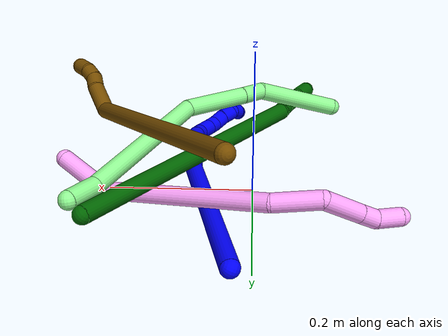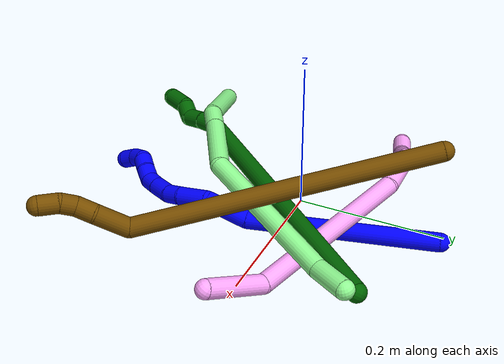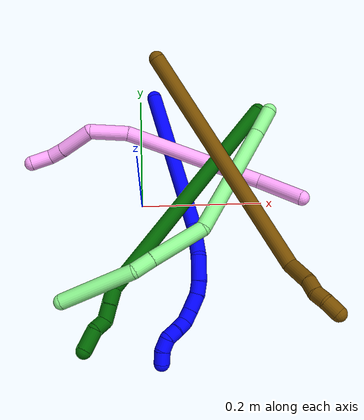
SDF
<sdf version="1.7">
 <world name="default">
  <model name="1">
   <static>0</static>
   <link name="1">
    <collision name="collision-cylinder-e_1_1_4">
     <pose>0.014286 -0.124227 0.009486 1.49459 0.114163 0.105794</pose>
     <geometry><cylinder><radius>0.0125</radius><length>0.25081</length></cylinder></geometry>
     <surface>
      <friction><ode><mu>1.16</mu><mu2>1.16</mu2><slip1>0</slip1><slip2>0</slip2></ode></friction>
      <contact><ode><kp>1e+06</kp><kd>1</kd><max_vel>0</max_vel><min_depth>0.001</min_depth></ode></contact>
     </surface>
    </collision>
    <visual name="visual-cylinder-e_1_1_4">
     <pose>0.014286 -0.124227 0.009486 1.49459 0.114163 0.105794</pose>
     <geometry><cylinder><radius>0.0125</radius><length>0.25081</length></cylinder></geometry>
     <material><ambient>0 0 1 1</ambient></material>
    </visual>
    <collision name="collision-cylinder-e_2_4_5">
     <pose>0.022051 -0.276736 0.021442 1.48367 -0.225746 -0.207028</pose>
     <geometry><cylinder><radius>0.0125</radius><length>0.058258</length></cylinder></geometry>
     <surface>
      <friction><ode><mu>1.16</mu><mu2>1.16</mu2><slip1>0</slip1><slip2>0</slip2></ode></friction>
      <contact><ode><kp>1e+06</kp><kd>1</kd><max_vel>0</max_vel><min_depth>0.001</min_depth></ode></contact>
     </surface>
    </collision>
    <visual name="visual-cylinder-e_2_4_5">
     <pose>0.022051 -0.276736 0.021442 1.48367 -0.225746 -0.207028</pose>
     <geometry><cylinder><radius>0.0125</radius><length>0.058258</length></cylinder></geometry>
     <material><ambient>0 0 1 1</ambient></material>
    </visual>
    <collision name="collision-cylinder-e_3_5_6">
     <pose>0.017915 -0.324898 0.019459 1.79115 0.116489 0.145377</pose>
     <geometry><cylinder><radius>0.0125</radius><length>0.041024</length></cylinder></geometry>
     <surface>
      <friction><ode><mu>1.16</mu><mu2>1.16</mu2><slip1>0</slip1><slip2>0</slip2></ode></friction>
      <contact><ode><kp>1e+06</kp><kd>1</kd><max_vel>0</max_vel><min_depth>0.001</min_depth></ode></contact>
     </surface>
    </collision>
    <visual name="visual-cylinder-e_3_5_6">
     <pose>0.017915 -0.324898 0.019459 1.79115 0.116489 0.145377</pose>
     <geometry><cylinder><radius>0.0125</radius><length>0.041024</length></cylinder></geometry>
     <material><ambient>0 0 1 1</ambient></material>
    </visual>
    <collision name="collision-cylinder-e_4_6_7">
     <pose>0.021464 -0.354697 0.010706 1.97986 0.107372 0.163369</pose>
     <geometry><cylinder><radius>0.0125</radius><length>0.021746</length></cylinder></geometry>
     <surface>
      <friction><ode><mu>1.16</mu><mu2>1.16</mu2><slip1>0</slip1><slip2>0</slip2></ode></friction>
      <contact><ode><kp>1e+06</kp><kd>1</kd><max_vel>0</max_vel><min_depth>0.001</min_depth></ode></contact>
     </surface>
    </collision>
    <visual name="visual-cylinder-e_4_6_7">
     <pose>0.021464 -0.354697 0.010706 1.97986 0.107372 0.163369</pose>
     <geometry><cylinder><radius>0.0125</radius><length>0.021746</length></cylinder></geometry>
     <material><ambient>0 0 1 1</ambient></material>
    </visual>
    <collision name="collision-cylinder-e_5_7_8">
     <pose>0.02051 -0.376256 -0.001041 2.13992 -0.152204 -0.276813</pose>
     <geometry><cylinder><radius>0.0125</radius><length>0.027961</length></cylinder></geometry>
     <surface>
      <friction><ode><mu>1.16</mu><mu2>1.16</mu2><slip1>0</slip1><slip2>0</slip2></ode></friction>
      <contact><ode><kp>1e+06</kp><kd>1</kd><max_vel>0</max_vel><min_depth>0.001</min_depth></ode></contact>
     </surface>
    </collision>
    <visual name="visual-cylinder-e_5_7_8">
     <pose>0.02051 -0.376256 -0.001041 2.13992 -0.152204 -0.276813</pose>
     <geometry><cylinder><radius>0.0125</radius><length>0.027961</length></cylinder></geometry>
     <material><ambient>0 0 1 1</ambient></material>
    </visual>
    <collision name="collision-cylinder-e_6_8_9">
     <pose>0.016345 -0.396123 -0.013864 2.14971 -0.205152 -0.37602</pose>
     <geometry><cylinder><radius>0.0125</radius><length>0.020076</length></cylinder></geometry>
     <surface>
      <friction><ode><mu>1.16</mu><mu2>1.16</mu2><slip1>0</slip1><slip2>0</slip2></ode></friction>
      <contact><ode><kp>1e+06</kp><kd>1</kd><max_vel>0</max_vel><min_depth>0.001</min_depth></ode></contact>
     </surface>
    </collision>
    <visual name="visual-cylinder-e_6_8_9">
     <pose>0.016345 -0.396123 -0.013864 2.14971 -0.205152 -0.37602</pose>
     <geometry><cylinder><radius>0.0125</radius><length>0.020076</length></cylinder></geometry>
     <material><ambient>0 0 1 1</ambient></material>
    </visual>
    <collision name="collision-cylinder-e_7_9_10">
     <pose>0.008152 -0.410579 -0.024082 2.23134 -0.661951 -1.2243</pose>
     <geometry><cylinder><radius>0.0125</radius><length>0.020006</length></cylinder></geometry>
     <surface>
      <friction><ode><mu>1.16</mu><mu2>1.16</mu2><slip1>0</slip1><slip2>0</slip2></ode></friction>
      <contact><ode><kp>1e+06</kp><kd>1</kd><max_vel>0</max_vel><min_depth>0.001</min_depth></ode></contact>
     </surface>
    </collision>
    <visual name="visual-cylinder-e_7_9_10">
     <pose>0.008152 -0.410579 -0.024082 2.23134 -0.661951 -1.2243</pose>
     <geometry><cylinder><radius>0.0125</radius><length>0.020006</length></cylinder></geometry>
     <material><ambient>0 0 1 1</ambient></material>
    </visual>
    <collision name="collision-cylinder-e_8_10_11">
     <pose>-0.003493 -0.422564 -0.035025 2.38549 -0.58013 -1.28899</pose>
     <geometry><cylinder><radius>0.0125</radius><length>0.020056</length></cylinder></geometry>
     <surface>
      <friction><ode><mu>1.16</mu><mu2>1.16</mu2><slip1>0</slip1><slip2>0</slip2></ode></friction>
      <contact><ode><kp>1e+06</kp><kd>1</kd><max_vel>0</max_vel><min_depth>0.001</min_depth></ode></contact>
     </surface>
    </collision>
    <visual name="visual-cylinder-e_8_10_11">
     <pose>-0.003493 -0.422564 -0.035025 2.38549 -0.58013 -1.28899</pose>
     <geometry><cylinder><radius>0.0125</radius><length>0.020056</length></cylinder></geometry>
     <material><ambient>0 0 1 1</ambient></material>
    </visual>
    <collision name="collision-cylinder-e_9_11_12">
     <pose>-0.008362 -0.436161 -0.047344 2.24113 0.062663 0.129507</pose>
     <geometry><cylinder><radius>0.0125</radius><length>0.020054</length></cylinder></geometry>
     <surface>
      <friction><ode><mu>1.16</mu><mu2>1.16</mu2><slip1>0</slip1><slip2>0</slip2></ode></friction>
      <contact><ode><kp>1e+06</kp><kd>1</kd><max_vel>0</max_vel><min_depth>0.001</min_depth></ode></contact>
     </surface>
    </collision>
    <visual name="visual-cylinder-e_9_11_12">
     <pose>-0.008362 -0.436161 -0.047344 2.24113 0.062663 0.129507</pose>
     <geometry><cylinder><radius>0.0125</radius><length>0.020054</length></cylinder></geometry>
     <material><ambient>0 0 1 1</ambient></material>
    </visual>
    <collision name="collision-cylinder-e_10_12_2">
     <pose>-0.004368 -0.452542 -0.057544 2.00719 0.343042 0.531009</pose>
     <geometry><cylinder><radius>0.0125</radius><length>0.02001</length></cylinder></geometry>
     <surface>
      <friction><ode><mu>1.16</mu><mu2>1.16</mu2><slip1>0</slip1><slip2>0</slip2></ode></friction>
      <contact><ode><kp>1e+06</kp><kd>1</kd><max_vel>0</max_vel><min_depth>0.001</min_depth></ode></contact>
     </surface>
    </collision>
    <visual name="visual-cylinder-e_10_12_2">
     <pose>-0.004368 -0.452542 -0.057544 2.00719 0.343042 0.531009</pose>
     <geometry><cylinder><radius>0.0125</radius><length>0.02001</length></cylinder></geometry>
     <material><ambient>0 0 1 1</ambient></material>
    </visual>
    <collision name="collision-sphere-2">
     <pose>-0.001003 -0.461081 -0.061526 0 -0 0</pose>
     <geometry><sphere><radius>0.0125</radius></sphere></geometry>
     <surface>
      <friction><ode><mu>1.16</mu><mu2>1.16</mu2><slip1>0</slip1><slip2>0</slip2></ode></friction>
      <contact><ode><kp>1e+06</kp><kd>1</kd><max_vel>0</max_vel><min_depth>0.001</min_depth></ode></contact>
     </surface>
    </collision>
    <visual name="visual-sphere-2">
     <pose>-0.001003 -0.461081 -0.061526 0 -0 0</pose>
     <geometry><sphere><radius>0.0125</radius></sphere></geometry>
     <material><ambient>0 0 1 1</ambient></material>
    </visual>
    <collision name="collision-sphere-12">
     <pose>-0.007734 -0.444003 -0.053561 0 -0 0</pose>
     <geometry><sphere><radius>0.0125</radius></sphere></geometry>
     <surface>
      <friction><ode><mu>1.16</mu><mu2>1.16</mu2><slip1>0</slip1><slip2>0</slip2></ode></friction>
      <contact><ode><kp>1e+06</kp><kd>1</kd><max_vel>0</max_vel><min_depth>0.001</min_depth></ode></contact>
     </surface>
    </collision>
    <visual name="visual-sphere-12">
     <pose>-0.007734 -0.444003 -0.053561 0 -0 0</pose>
     <geometry><sphere><radius>0.0125</radius></sphere></geometry>
     <material><ambient>0 0 1 1</ambient></material>
    </visual>
    <collision name="collision-sphere-11">
     <pose>-0.00899 -0.428319 -0.041127 0 -0 0</pose>
     <geometry><sphere><radius>0.0125</radius></sphere></geometry>
     <surface>
      <friction><ode><mu>1.16</mu><mu2>1.16</mu2><slip1>0</slip1><slip2>0</slip2></ode></friction>
      <contact><ode><kp>1e+06</kp><kd>1</kd><max_vel>0</max_vel><min_depth>0.001</min_depth></ode></contact>
     </surface>
    </collision>
    <visual name="visual-sphere-11">
     <pose>-0.00899 -0.428319 -0.041127 0 -0 0</pose>
     <geometry><sphere><radius>0.0125</radius></sphere></geometry>
     <material><ambient>0 0 1 1</ambient></material>
    </visual>
    <collision name="collision-sphere-10">
     <pose>0.002004 -0.41681 -0.028923 0 -0 0</pose>
     <geometry><sphere><radius>0.0125</radius></sphere></geometry>
     <surface>
      <friction><ode><mu>1.16</mu><mu2>1.16</mu2><slip1>0</slip1><slip2>0</slip2></ode></friction>
      <contact><ode><kp>1e+06</kp><kd>1</kd><max_vel>0</max_vel><min_depth>0.001</min_depth></ode></contact>
     </surface>
    </collision>
    <visual name="visual-sphere-10">
     <pose>0.002004 -0.41681 -0.028923 0 -0 0</pose>
     <geometry><sphere><radius>0.0125</radius></sphere></geometry>
     <material><ambient>0 0 1 1</ambient></material>
    </visual>
    <collision name="collision-sphere-9">
     <pose>0.014301 -0.404349 -0.019241 0 -0 0</pose>
     <geometry><sphere><radius>0.0125</radius></sphere></geometry>
     <surface>
      <friction><ode><mu>1.16</mu><mu2>1.16</mu2><slip1>0</slip1><slip2>0</slip2></ode></friction>
      <contact><ode><kp>1e+06</kp><kd>1</kd><max_vel>0</max_vel><min_depth>0.001</min_depth></ode></contact>
     </surface>
    </collision>
    <visual name="visual-sphere-9">
     <pose>0.014301 -0.404349 -0.019241 0 -0 0</pose>
     <geometry><sphere><radius>0.0125</radius></sphere></geometry>
     <material><ambient>0 0 1 1</ambient></material>
    </visual>
    <collision name="collision-sphere-4">
     <pose>0.028571 -0.248454 0.018972 0 -0 0</pose>
     <geometry><sphere><radius>0.0125</radius></sphere></geometry>
     <surface>
      <friction><ode><mu>1.16</mu><mu2>1.16</mu2><slip1>0</slip1><slip2>0</slip2></ode></friction>
      <contact><ode><kp>1e+06</kp><kd>1</kd><max_vel>0</max_vel><min_depth>0.001</min_depth></ode></contact>
     </surface>
    </collision>
    <visual name="visual-sphere-4">
     <pose>0.028571 -0.248454 0.018972 0 -0 0</pose>
     <geometry><sphere><radius>0.0125</radius></sphere></geometry>
     <material><ambient>0 0 1 1</ambient></material>
    </visual>
    <collision name="collision-sphere-1">
     <geometry><sphere><radius>0.0125</radius></sphere></geometry>
     <surface>
      <friction><ode><mu>1.16</mu><mu2>1.16</mu2><slip1>0</slip1><slip2>0</slip2></ode></friction>
      <contact><ode><kp>1e+06</kp><kd>1</kd><max_vel>0</max_vel><min_depth>0.001</min_depth></ode></contact>
     </surface>
    </collision>
    <visual name="visual-sphere-1">
     <geometry><sphere><radius>0.0125</radius></sphere></geometry>
     <material><ambient>0 0 1 1</ambient></material>
    </visual>
    <collision name="collision-sphere-8">
     <pose>0.01839 -0.387897 -0.008488 0 -0 0</pose>
     <geometry><sphere><radius>0.0125</radius></sphere></geometry>
     <surface>
      <friction><ode><mu>1.16</mu><mu2>1.16</mu2><slip1>0</slip1><slip2>0</slip2></ode></friction>
      <contact><ode><kp>1e+06</kp><kd>1</kd><max_vel>0</max_vel><min_depth>0.001</min_depth></ode></contact>
     </surface>
    </collision>
    <visual name="visual-sphere-8">
     <pose>0.01839 -0.387897 -0.008488 0 -0 0</pose>
     <geometry><sphere><radius>0.0125</radius></sphere></geometry>
     <material><ambient>0 0 1 1</ambient></material>
    </visual>
    <collision name="collision-sphere-5">
     <pose>0.015531 -0.305018 0.023912 0 -0 0</pose>
     <geometry><sphere><radius>0.0125</radius></sphere></geometry>
     <surface>
      <friction><ode><mu>1.16</mu><mu2>1.16</mu2><slip1>0</slip1><slip2>0</slip2></ode></friction>
      <contact><ode><kp>1e+06</kp><kd>1</kd><max_vel>0</max_vel><min_depth>0.001</min_depth></ode></contact>
     </surface>
    </collision>
    <visual name="visual-sphere-5">
     <pose>0.015531 -0.305018 0.023912 0 -0 0</pose>
     <geometry><sphere><radius>0.0125</radius></sphere></geometry>
     <material><ambient>0 0 1 1</ambient></material>
    </visual>
    <collision name="collision-sphere-6">
     <pose>0.020299 -0.344779 0.015006 0 -0 0</pose>
     <geometry><sphere><radius>0.0125</radius></sphere></geometry>
     <surface>
      <friction><ode><mu>1.16</mu><mu2>1.16</mu2><slip1>0</slip1><slip2>0</slip2></ode></friction>
      <contact><ode><kp>1e+06</kp><kd>1</kd><max_vel>0</max_vel><min_depth>0.001</min_depth></ode></contact>
     </surface>
    </collision>
    <visual name="visual-sphere-6">
     <pose>0.020299 -0.344779 0.015006 0 -0 0</pose>
     <geometry><sphere><radius>0.0125</radius></sphere></geometry>
     <material><ambient>0 0 1 1</ambient></material>
    </visual>
    <collision name="collision-sphere-7">
     <pose>0.02263 -0.364616 0.006406 0 -0 0</pose>
     <geometry><sphere><radius>0.0125</radius></sphere></geometry>
     <surface>
      <friction><ode><mu>1.16</mu><mu2>1.16</mu2><slip1>0</slip1><slip2>0</slip2></ode></friction>
      <contact><ode><kp>1e+06</kp><kd>1</kd><max_vel>0</max_vel><min_depth>0.001</min_depth></ode></contact>
     </surface>
    </collision>
    <visual name="visual-sphere-7">
     <pose>0.02263 -0.364616 0.006406 0 -0 0</pose>
     <geometry><sphere><radius>0.0125</radius></sphere></geometry>
     <material><ambient>0 0 1 1</ambient></material>
    </visual>
    <inertial>
     <pose>0.013618 -0.24257 0.002134 0 -0 0</pose>
     <mass>0.5</mass>
     <inertia>
      <ixx>0.001477</ixx>
      <ixy>0</ixy>
      <ixz>0</ixz>
      <iyy>0.000212</iyy>
      <iyz>0</iyz>
      <izz>0.001196</izz>
     </inertia>
    </inertial>
   </link>
   <pose>0.024946 0.202003 0.011492 -0.12886 1.05824 0.006364</pose>
  </model>
  <model name="4">
   <static>0</static>
   <link name="4">
    <collision name="collision-cylinder-e_1_1_4">
     <pose>-0.035362 0.017041 0.011123 -0.992518 -1.04861 0.606896</pose>
     <geometry><cylinder><radius>0.0125</radius><length>0.081598</length></cylinder></geometry>
     <surface>
      <friction><ode><mu>1.16</mu><mu2>1.16</mu2><slip1>0</slip1><slip2>0</slip2></ode></friction>
      <contact><ode><kp>1e+06</kp><kd>1</kd><max_vel>0</max_vel><min_depth>0.001</min_depth></ode></contact>
     </surface>
    </collision>
    <visual name="visual-cylinder-e_1_1_4">
     <pose>-0.035362 0.017041 0.011123 -0.992518 -1.04861 0.606896</pose>
     <geometry><cylinder><radius>0.0125</radius><length>0.081598</length></cylinder></geometry>
     <material><ambient>1 0.65098 0.996078 1</ambient></material>
    </visual>
    <collision name="collision-cylinder-e_2_4_5">
     <pose>-0.165417 0.036977 0.091688 -0.041663 -0.93763 0.021104</pose>
     <geometry><cylinder><radius>0.0125</radius><length>0.234925</length></cylinder></geometry>
     <surface>
      <friction><ode><mu>1.16</mu><mu2>1.16</mu2><slip1>0</slip1><slip2>0</slip2></ode></friction>
      <contact><ode><kp>1e+06</kp><kd>1</kd><max_vel>0</max_vel><min_depth>0.001</min_depth></ode></contact>
     </surface>
    </collision>
    <visual name="visual-cylinder-e_2_4_5">
     <pose>-0.165417 0.036977 0.091688 -0.041663 -0.93763 0.021104</pose>
     <geometry><cylinder><radius>0.0125</radius><length>0.234925</length></cylinder></geometry>
     <material><ambient>1 0.65098 0.996078 1</ambient></material>
    </visual>
    <collision name="collision-cylinder-e_3_5_6">
     <pose>-0.287632 0.031915 0.175244 0.513315 -1.03871 -0.297863</pose>
     <geometry><cylinder><radius>0.0125</radius><length>0.063874</length></cylinder></geometry>
     <surface>
      <friction><ode><mu>1.16</mu><mu2>1.16</mu2><slip1>0</slip1><slip2>0</slip2></ode></friction>
      <contact><ode><kp>1e+06</kp><kd>1</kd><max_vel>0</max_vel><min_depth>0.001</min_depth></ode></contact>
     </surface>
    </collision>
    <visual name="visual-cylinder-e_3_5_6">
     <pose>-0.287632 0.031915 0.175244 0.513315 -1.03871 -0.297863</pose>
     <geometry><cylinder><radius>0.0125</radius><length>0.063874</length></cylinder></geometry>
     <material><ambient>1 0.65098 0.996078 1</ambient></material>
    </visual>
    <collision name="collision-cylinder-e_4_6_7">
     <pose>-0.342791 0.016419 0.181352 2.38624 -1.19209 -2.0832</pose>
     <geometry><cylinder><radius>0.0125</radius><length>0.05949</length></cylinder></geometry>
     <surface>
      <friction><ode><mu>1.16</mu><mu2>1.16</mu2><slip1>0</slip1><slip2>0</slip2></ode></friction>
      <contact><ode><kp>1e+06</kp><kd>1</kd><max_vel>0</max_vel><min_depth>0.001</min_depth></ode></contact>
     </surface>
    </collision>
    <visual name="visual-cylinder-e_4_6_7">
     <pose>-0.342791 0.016419 0.181352 2.38624 -1.19209 -2.0832</pose>
     <geometry><cylinder><radius>0.0125</radius><length>0.05949</length></cylinder></geometry>
     <material><ambient>1 0.65098 0.996078 1</ambient></material>
    </visual>
    <collision name="collision-cylinder-e_5_7_8">
     <pose>-0.38246 0.006115 0.17087 2.30109 -1.2716 -2.0527</pose>
     <geometry><cylinder><radius>0.0125</radius><length>0.025183</length></cylinder></geometry>
     <surface>
      <friction><ode><mu>1.16</mu><mu2>1.16</mu2><slip1>0</slip1><slip2>0</slip2></ode></friction>
      <contact><ode><kp>1e+06</kp><kd>1</kd><max_vel>0</max_vel><min_depth>0.001</min_depth></ode></contact>
     </surface>
    </collision>
    <visual name="visual-cylinder-e_5_7_8">
     <pose>-0.38246 0.006115 0.17087 2.30109 -1.2716 -2.0527</pose>
     <geometry><cylinder><radius>0.0125</radius><length>0.025183</length></cylinder></geometry>
     <material><ambient>1 0.65098 0.996078 1</ambient></material>
    </visual>
    <collision name="collision-cylinder-e_6_8_2">
     <pose>-0.409862 -0.004625 0.170674 1.29238 -1.07589 -0.84569</pose>
     <geometry><cylinder><radius>0.0125</radius><length>0.034931</length></cylinder></geometry>
     <surface>
      <friction><ode><mu>1.16</mu><mu2>1.16</mu2><slip1>0</slip1><slip2>0</slip2></ode></friction>
      <contact><ode><kp>1e+06</kp><kd>1</kd><max_vel>0</max_vel><min_depth>0.001</min_depth></ode></contact>
     </surface>
    </collision>
    <visual name="visual-cylinder-e_6_8_2">
     <pose>-0.409862 -0.004625 0.170674 1.29238 -1.07589 -0.84569</pose>
     <geometry><cylinder><radius>0.0125</radius><length>0.034931</length></cylinder></geometry>
     <material><ambient>1 0.65098 0.996078 1</ambient></material>
    </visual>
    <collision name="collision-sphere-2">
     <pose>-0.425231 -0.012601 0.172954 0 -0 0</pose>
     <geometry><sphere><radius>0.0125</radius></sphere></geometry>
     <surface>
      <friction><ode><mu>1.16</mu><mu2>1.16</mu2><slip1>0</slip1><slip2>0</slip2></ode></friction>
      <contact><ode><kp>1e+06</kp><kd>1</kd><max_vel>0</max_vel><min_depth>0.001</min_depth></ode></contact>
     </surface>
    </collision>
    <visual name="visual-sphere-2">
     <pose>-0.425231 -0.012601 0.172954 0 -0 0</pose>
     <geometry><sphere><radius>0.0125</radius></sphere></geometry>
     <material><ambient>1 0.65098 0.996078 1</ambient></material>
    </visual>
    <collision name="collision-sphere-4">
     <pose>-0.070723 0.034082 0.022246 0 -0 0</pose>
     <geometry><sphere><radius>0.0125</radius></sphere></geometry>
     <surface>
      <friction><ode><mu>1.16</mu><mu2>1.16</mu2><slip1>0</slip1><slip2>0</slip2></ode></friction>
      <contact><ode><kp>1e+06</kp><kd>1</kd><max_vel>0</max_vel><min_depth>0.001</min_depth></ode></contact>
     </surface>
    </collision>
    <visual name="visual-sphere-4">
     <pose>-0.070723 0.034082 0.022246 0 -0 0</pose>
     <geometry><sphere><radius>0.0125</radius></sphere></geometry>
     <material><ambient>1 0.65098 0.996078 1</ambient></material>
    </visual>
    <collision name="collision-sphere-1">
     <geometry><sphere><radius>0.0125</radius></sphere></geometry>
     <surface>
      <friction><ode><mu>1.16</mu><mu2>1.16</mu2><slip1>0</slip1><slip2>0</slip2></ode></friction>
      <contact><ode><kp>1e+06</kp><kd>1</kd><max_vel>0</max_vel><min_depth>0.001</min_depth></ode></contact>
     </surface>
    </collision>
    <visual name="visual-sphere-1">
     <geometry><sphere><radius>0.0125</radius></sphere></geometry>
     <material><ambient>1 0.65098 0.996078 1</ambient></material>
    </visual>
    <collision name="collision-sphere-8">
     <pose>-0.394492 0.003351 0.168395 0 -0 0</pose>
     <geometry><sphere><radius>0.0125</radius></sphere></geometry>
     <surface>
      <friction><ode><mu>1.16</mu><mu2>1.16</mu2><slip1>0</slip1><slip2>0</slip2></ode></friction>
      <contact><ode><kp>1e+06</kp><kd>1</kd><max_vel>0</max_vel><min_depth>0.001</min_depth></ode></contact>
     </surface>
    </collision>
    <visual name="visual-sphere-8">
     <pose>-0.394492 0.003351 0.168395 0 -0 0</pose>
     <geometry><sphere><radius>0.0125</radius></sphere></geometry>
     <material><ambient>1 0.65098 0.996078 1</ambient></material>
    </visual>
    <collision name="collision-sphere-5">
     <pose>-0.26011 0.039872 0.16113 0 -0 0</pose>
     <geometry><sphere><radius>0.0125</radius></sphere></geometry>
     <surface>
      <friction><ode><mu>1.16</mu><mu2>1.16</mu2><slip1>0</slip1><slip2>0</slip2></ode></friction>
      <contact><ode><kp>1e+06</kp><kd>1</kd><max_vel>0</max_vel><min_depth>0.001</min_depth></ode></contact>
     </surface>
    </collision>
    <visual name="visual-sphere-5">
     <pose>-0.26011 0.039872 0.16113 0 -0 0</pose>
     <geometry><sphere><radius>0.0125</radius></sphere></geometry>
     <material><ambient>1 0.65098 0.996078 1</ambient></material>
    </visual>
    <collision name="collision-sphere-6">
     <pose>-0.315153 0.023959 0.189359 0 -0 0</pose>
     <geometry><sphere><radius>0.0125</radius></sphere></geometry>
     <surface>
      <friction><ode><mu>1.16</mu><mu2>1.16</mu2><slip1>0</slip1><slip2>0</slip2></ode></friction>
      <contact><ode><kp>1e+06</kp><kd>1</kd><max_vel>0</max_vel><min_depth>0.001</min_depth></ode></contact>
     </surface>
    </collision>
    <visual name="visual-sphere-6">
     <pose>-0.315153 0.023959 0.189359 0 -0 0</pose>
     <geometry><sphere><radius>0.0125</radius></sphere></geometry>
     <material><ambient>1 0.65098 0.996078 1</ambient></material>
    </visual>
    <collision name="collision-sphere-7">
     <pose>-0.370428 0.00888 0.173346 0 -0 0</pose>
     <geometry><sphere><radius>0.0125</radius></sphere></geometry>
     <surface>
      <friction><ode><mu>1.16</mu><mu2>1.16</mu2><slip1>0</slip1><slip2>0</slip2></ode></friction>
      <contact><ode><kp>1e+06</kp><kd>1</kd><max_vel>0</max_vel><min_depth>0.001</min_depth></ode></contact>
     </surface>
    </collision>
    <visual name="visual-sphere-7">
     <pose>-0.370428 0.00888 0.173346 0 -0 0</pose>
     <geometry><sphere><radius>0.0125</radius></sphere></geometry>
     <material><ambient>1 0.65098 0.996078 1</ambient></material>
    </visual>
    <inertial>
     <pose>-0.208918 0.02617 0.109389 0 -0 0</pose>
     <mass>0.5</mass>
     <inertia>
      <ixx>0.000656</ixx>
      <ixy>0</ixy>
      <ixz>0</ixz>
      <iyy>0.001193</iyy>
      <iyz>0</iyz>
      <izz>0.000947</izz>
     </inertia>
    </inertial>
   </link>
   <pose>0.261997 -0.007724 0.040234 -0.493542 -0.419706 -0.041312</pose>
  </model>
  <model name="6">
   <static>0</static>
   <link name="6">
    <collision name="collision-cylinder-e_1_1_4">
     <pose>-0.114454 -0.14398 0.067561 1.13206 -0.623788 -0.404124</pose>
     <geometry><cylinder><radius>0.0125</radius><length>0.39189</length></cylinder></geometry>
     <surface>
      <friction><ode><mu>1.16</mu><mu2>1.16</mu2><slip1>0</slip1><slip2>0</slip2></ode></friction>
      <contact><ode><kp>1e+06</kp><kd>1</kd><max_vel>0</max_vel><min_depth>0.001</min_depth></ode></contact>
     </surface>
    </collision>
    <visual name="visual-cylinder-e_1_1_4">
     <pose>-0.114454 -0.14398 0.067561 1.13206 -0.623788 -0.404124</pose>
     <geometry><cylinder><radius>0.0125</radius><length>0.39189</length></cylinder></geometry>
     <material><ambient>0 0.392157 0.003922 1</ambient></material>
    </visual>
    <collision name="collision-cylinder-e_2_4_5">
     <pose>-0.234416 -0.299425 0.135308 1.55459 -0.447712 -0.440746</pose>
     <geometry><cylinder><radius>0.0125</radius><length>0.025442</length></cylinder></geometry>
     <surface>
      <friction><ode><mu>1.16</mu><mu2>1.16</mu2><slip1>0</slip1><slip2>0</slip2></ode></friction>
      <contact><ode><kp>1e+06</kp><kd>1</kd><max_vel>0</max_vel><min_depth>0.001</min_depth></ode></contact>
     </surface>
    </collision>
    <visual name="visual-cylinder-e_2_4_5">
     <pose>-0.234416 -0.299425 0.135308 1.55459 -0.447712 -0.440746</pose>
     <geometry><cylinder><radius>0.0125</radius><length>0.025442</length></cylinder></geometry>
     <material><ambient>0 0.392157 0.003922 1</ambient></material>
    </visual>
    <collision name="collision-cylinder-e_3_5_6">
     <pose>-0.246269 -0.322156 0.134774 1.63461 -0.512176 -0.544352</pose>
     <geometry><cylinder><radius>0.0125</radius><length>0.0259</length></cylinder></geometry>
     <surface>
      <friction><ode><mu>1.16</mu><mu2>1.16</mu2><slip1>0</slip1><slip2>0</slip2></ode></friction>
      <contact><ode><kp>1e+06</kp><kd>1</kd><max_vel>0</max_vel><min_depth>0.001</min_depth></ode></contact>
     </surface>
    </collision>
    <visual name="visual-cylinder-e_3_5_6">
     <pose>-0.246269 -0.322156 0.134774 1.63461 -0.512176 -0.544352</pose>
     <geometry><cylinder><radius>0.0125</radius><length>0.0259</length></cylinder></geometry>
     <material><ambient>0 0.392157 0.003922 1</ambient></material>
    </visual>
    <collision name="collision-cylinder-e_4_6_7">
     <pose>-0.256541 -0.341065 0.141081 0.827388 -0.361435 -0.160088</pose>
     <geometry><cylinder><radius>0.0125</radius><length>0.0222</length></cylinder></geometry>
     <surface>
      <friction><ode><mu>1.16</mu><mu2>1.16</mu2><slip1>0</slip1><slip2>0</slip2></ode></friction>
      <contact><ode><kp>1e+06</kp><kd>1</kd><max_vel>0</max_vel><min_depth>0.001</min_depth></ode></contact>
     </surface>
    </collision>
    <visual name="visual-cylinder-e_4_6_7">
     <pose>-0.256541 -0.341065 0.141081 0.827388 -0.361435 -0.160088</pose>
     <geometry><cylinder><radius>0.0125</radius><length>0.0222</length></cylinder></geometry>
     <material><ambient>0 0.392157 0.003922 1</ambient></material>
    </visual>
    <collision name="collision-cylinder-e_5_7_2">
     <pose>-0.269321 -0.363192 0.151357 1.35016 -0.537878 -0.434332</pose>
     <geometry><cylinder><radius>0.0125</radius><length>0.034568</length></cylinder></geometry>
     <surface>
      <friction><ode><mu>1.16</mu><mu2>1.16</mu2><slip1>0</slip1><slip2>0</slip2></ode></friction>
      <contact><ode><kp>1e+06</kp><kd>1</kd><max_vel>0</max_vel><min_depth>0.001</min_depth></ode></contact>
     </surface>
    </collision>
    <visual name="visual-cylinder-e_5_7_2">
     <pose>-0.269321 -0.363192 0.151357 1.35016 -0.537878 -0.434332</pose>
     <geometry><cylinder><radius>0.0125</radius><length>0.034568</length></cylinder></geometry>
     <material><ambient>0 0.392157 0.003922 1</ambient></material>
    </visual>
    <collision name="collision-sphere-2">
     <pose>-0.278175 -0.377676 0.154605 0 -0 0</pose>
     <geometry><sphere><radius>0.0125</radius></sphere></geometry>
     <surface>
      <friction><ode><mu>1.16</mu><mu2>1.16</mu2><slip1>0</slip1><slip2>0</slip2></ode></friction>
      <contact><ode><kp>1e+06</kp><kd>1</kd><max_vel>0</max_vel><min_depth>0.001</min_depth></ode></contact>
     </surface>
    </collision>
    <visual name="visual-sphere-2">
     <pose>-0.278175 -0.377676 0.154605 0 -0 0</pose>
     <geometry><sphere><radius>0.0125</radius></sphere></geometry>
     <material><ambient>0 0.392157 0.003922 1</ambient></material>
    </visual>
    <collision name="collision-sphere-7">
     <pose>-0.260466 -0.348709 0.148108 0 -0 0</pose>
     <geometry><sphere><radius>0.0125</radius></sphere></geometry>
     <surface>
      <friction><ode><mu>1.16</mu><mu2>1.16</mu2><slip1>0</slip1><slip2>0</slip2></ode></friction>
      <contact><ode><kp>1e+06</kp><kd>1</kd><max_vel>0</max_vel><min_depth>0.001</min_depth></ode></contact>
     </surface>
    </collision>
    <visual name="visual-sphere-7">
     <pose>-0.260466 -0.348709 0.148108 0 -0 0</pose>
     <geometry><sphere><radius>0.0125</radius></sphere></geometry>
     <material><ambient>0 0.392157 0.003922 1</ambient></material>
    </visual>
    <collision name="collision-sphere-6">
     <pose>-0.252615 -0.333422 0.134054 0 -0 0</pose>
     <geometry><sphere><radius>0.0125</radius></sphere></geometry>
     <surface>
      <friction><ode><mu>1.16</mu><mu2>1.16</mu2><slip1>0</slip1><slip2>0</slip2></ode></friction>
      <contact><ode><kp>1e+06</kp><kd>1</kd><max_vel>0</max_vel><min_depth>0.001</min_depth></ode></contact>
     </surface>
    </collision>
    <visual name="visual-sphere-6">
     <pose>-0.252615 -0.333422 0.134054 0 -0 0</pose>
     <geometry><sphere><radius>0.0125</radius></sphere></geometry>
     <material><ambient>0 0.392157 0.003922 1</ambient></material>
    </visual>
    <collision name="collision-sphere-5">
     <pose>-0.239922 -0.310891 0.135494 0 -0 0</pose>
     <geometry><sphere><radius>0.0125</radius></sphere></geometry>
     <surface>
      <friction><ode><mu>1.16</mu><mu2>1.16</mu2><slip1>0</slip1><slip2>0</slip2></ode></friction>
      <contact><ode><kp>1e+06</kp><kd>1</kd><max_vel>0</max_vel><min_depth>0.001</min_depth></ode></contact>
     </surface>
    </collision>
    <visual name="visual-sphere-5">
     <pose>-0.239922 -0.310891 0.135494 0 -0 0</pose>
     <geometry><sphere><radius>0.0125</radius></sphere></geometry>
     <material><ambient>0 0.392157 0.003922 1</ambient></material>
    </visual>
    <collision name="collision-sphere-1">
     <geometry><sphere><radius>0.0125</radius></sphere></geometry>
     <surface>
      <friction><ode><mu>1.16</mu><mu2>1.16</mu2><slip1>0</slip1><slip2>0</slip2></ode></friction>
      <contact><ode><kp>1e+06</kp><kd>1</kd><max_vel>0</max_vel><min_depth>0.001</min_depth></ode></contact>
     </surface>
    </collision>
    <visual name="visual-sphere-1">
     <geometry><sphere><radius>0.0125</radius></sphere></geometry>
     <material><ambient>0 0.392157 0.003922 1</ambient></material>
    </visual>
    <collision name="collision-sphere-4">
     <pose>-0.228909 -0.28796 0.135122 0 -0 0</pose>
     <geometry><sphere><radius>0.0125</radius></sphere></geometry>
     <surface>
      <friction><ode><mu>1.16</mu><mu2>1.16</mu2><slip1>0</slip1><slip2>0</slip2></ode></friction>
      <contact><ode><kp>1e+06</kp><kd>1</kd><max_vel>0</max_vel><min_depth>0.001</min_depth></ode></contact>
     </surface>
    </collision>
    <visual name="visual-sphere-4">
     <pose>-0.228909 -0.28796 0.135122 0 -0 0</pose>
     <geometry><sphere><radius>0.0125</radius></sphere></geometry>
     <material><ambient>0 0.392157 0.003922 1</ambient></material>
    </visual>
    <inertial>
     <pose>-0.144402 -0.185025 0.083548 0 -0 0</pose>
     <mass>0.5</mass>
     <inertia>
      <ixx>0.002132</ixx>
      <ixy>0</ixy>
      <ixz>0</ixz>
      <iyy>0.001376</iyy>
      <iyz>0</iyz>
      <izz>0.006662</izz>
     </inertia>
    </inertial>
   </link>
   <pose>0.200062 0.152099 0.046056 -0.306718 -0.717982 0.25924</pose>
  </model>
  <model name="12">
   <static>0</static>
   <link name="12">
    <collision name="collision-cylinder-e_1_1_4">
     <pose>0.010399 -0.010293 -0.192214 3.0881 0.053969 1.57957</pose>
     <geometry><cylinder><radius>0.0125</radius><length>0.38554</length></cylinder></geometry>
     <surface>
      <friction><ode><mu>1.16</mu><mu2>1.16</mu2><slip1>0</slip1><slip2>0</slip2></ode></friction>
      <contact><ode><kp>1e+06</kp><kd>1</kd><max_vel>0</max_vel><min_depth>0.001</min_depth></ode></contact>
     </surface>
    </collision>
    <visual name="visual-cylinder-e_1_1_4">
     <pose>0.010399 -0.010293 -0.192214 3.0881 0.053969 1.57957</pose>
     <geometry><cylinder><radius>0.0125</radius><length>0.38554</length></cylinder></geometry>
     <material><ambient>0.466667 0.301961 0 1</ambient></material>
    </visual>
    <collision name="collision-cylinder-e_2_4_5">
     <pose>0.019249 -0.037178 -0.40014 2.32896 -0.067647 -0.156961</pose>
     <geometry><cylinder><radius>0.0125</radius><length>0.045806</length></cylinder></geometry>
     <surface>
      <friction><ode><mu>1.16</mu><mu2>1.16</mu2><slip1>0</slip1><slip2>0</slip2></ode></friction>
      <contact><ode><kp>1e+06</kp><kd>1</kd><max_vel>0</max_vel><min_depth>0.001</min_depth></ode></contact>
     </surface>
    </collision>
    <visual name="visual-cylinder-e_2_4_5">
     <pose>0.019249 -0.037178 -0.40014 2.32896 -0.067647 -0.156961</pose>
     <geometry><cylinder><radius>0.0125</radius><length>0.045806</length></cylinder></geometry>
     <material><ambient>0.466667 0.301961 0 1</ambient></material>
    </visual>
    <collision name="collision-cylinder-e_3_5_6">
     <pose>0.014595 -0.06053 -0.424951 2.50257 -0.267435 -0.772354</pose>
     <geometry><cylinder><radius>0.0125</radius><length>0.023507</length></cylinder></geometry>
     <surface>
      <friction><ode><mu>1.16</mu><mu2>1.16</mu2><slip1>0</slip1><slip2>0</slip2></ode></friction>
      <contact><ode><kp>1e+06</kp><kd>1</kd><max_vel>0</max_vel><min_depth>0.001</min_depth></ode></contact>
     </surface>
    </collision>
    <visual name="visual-cylinder-e_3_5_6">
     <pose>0.014595 -0.06053 -0.424951 2.50257 -0.267435 -0.772354</pose>
     <geometry><cylinder><radius>0.0125</radius><length>0.023507</length></cylinder></geometry>
     <material><ambient>0.466667 0.301961 0 1</ambient></material>
    </visual>
    <collision name="collision-cylinder-e_4_6_7">
     <pose>0.012429 -0.073513 -0.441877 2.46999 0.093684 0.267019</pose>
     <geometry><cylinder><radius>0.0125</radius><length>0.020086</length></cylinder></geometry>
     <surface>
      <friction><ode><mu>1.16</mu><mu2>1.16</mu2><slip1>0</slip1><slip2>0</slip2></ode></friction>
      <contact><ode><kp>1e+06</kp><kd>1</kd><max_vel>0</max_vel><min_depth>0.001</min_depth></ode></contact>
     </surface>
    </collision>
    <visual name="visual-cylinder-e_4_6_7">
     <pose>0.012429 -0.073513 -0.441877 2.46999 0.093684 0.267019</pose>
     <geometry><cylinder><radius>0.0125</radius><length>0.020086</length></cylinder></geometry>
     <material><ambient>0.466667 0.301961 0 1</ambient></material>
    </visual>
    <collision name="collision-cylinder-e_5_7_2">
     <pose>0.015597 -0.083838 -0.461332 2.80228 0.178855 0.964439</pose>
     <geometry><cylinder><radius>0.0125</radius><length>0.025061</length></cylinder></geometry>
     <surface>
      <friction><ode><mu>1.16</mu><mu2>1.16</mu2><slip1>0</slip1><slip2>0</slip2></ode></friction>
      <contact><ode><kp>1e+06</kp><kd>1</kd><max_vel>0</max_vel><min_depth>0.001</min_depth></ode></contact>
     </surface>
    </collision>
    <visual name="visual-cylinder-e_5_7_2">
     <pose>0.015597 -0.083838 -0.461332 2.80228 0.178855 0.964439</pose>
     <geometry><cylinder><radius>0.0125</radius><length>0.025061</length></cylinder></geometry>
     <material><ambient>0.466667 0.301961 0 1</ambient></material>
    </visual>
    <collision name="collision-sphere-2">
     <pose>0.017826 -0.087943 -0.472959 0 -0 0</pose>
     <geometry><sphere><radius>0.0125</radius></sphere></geometry>
     <surface>
      <friction><ode><mu>1.16</mu><mu2>1.16</mu2><slip1>0</slip1><slip2>0</slip2></ode></friction>
      <contact><ode><kp>1e+06</kp><kd>1</kd><max_vel>0</max_vel><min_depth>0.001</min_depth></ode></contact>
     </surface>
    </collision>
    <visual name="visual-sphere-2">
     <pose>0.017826 -0.087943 -0.472959 0 -0 0</pose>
     <geometry><sphere><radius>0.0125</radius></sphere></geometry>
     <material><ambient>0.466667 0.301961 0 1</ambient></material>
    </visual>
    <collision name="collision-sphere-7">
     <pose>0.013368 -0.079734 -0.449705 0 -0 0</pose>
     <geometry><sphere><radius>0.0125</radius></sphere></geometry>
     <surface>
      <friction><ode><mu>1.16</mu><mu2>1.16</mu2><slip1>0</slip1><slip2>0</slip2></ode></friction>
      <contact><ode><kp>1e+06</kp><kd>1</kd><max_vel>0</max_vel><min_depth>0.001</min_depth></ode></contact>
     </surface>
    </collision>
    <visual name="visual-sphere-7">
     <pose>0.013368 -0.079734 -0.449705 0 -0 0</pose>
     <geometry><sphere><radius>0.0125</radius></sphere></geometry>
     <material><ambient>0.466667 0.301961 0 1</ambient></material>
    </visual>
    <collision name="collision-sphere-6">
     <pose>0.011489 -0.067291 -0.43405 0 -0 0</pose>
     <geometry><sphere><radius>0.0125</radius></sphere></geometry>
     <surface>
      <friction><ode><mu>1.16</mu><mu2>1.16</mu2><slip1>0</slip1><slip2>0</slip2></ode></friction>
      <contact><ode><kp>1e+06</kp><kd>1</kd><max_vel>0</max_vel><min_depth>0.001</min_depth></ode></contact>
     </surface>
    </collision>
    <visual name="visual-sphere-6">
     <pose>0.011489 -0.067291 -0.43405 0 -0 0</pose>
     <geometry><sphere><radius>0.0125</radius></sphere></geometry>
     <material><ambient>0.466667 0.301961 0 1</ambient></material>
    </visual>
    <collision name="collision-sphere-5">
     <pose>0.017701 -0.05377 -0.415852 0 -0 0</pose>
     <geometry><sphere><radius>0.0125</radius></sphere></geometry>
     <surface>
      <friction><ode><mu>1.16</mu><mu2>1.16</mu2><slip1>0</slip1><slip2>0</slip2></ode></friction>
      <contact><ode><kp>1e+06</kp><kd>1</kd><max_vel>0</max_vel><min_depth>0.001</min_depth></ode></contact>
     </surface>
    </collision>
    <visual name="visual-sphere-5">
     <pose>0.017701 -0.05377 -0.415852 0 -0 0</pose>
     <geometry><sphere><radius>0.0125</radius></sphere></geometry>
     <material><ambient>0.466667 0.301961 0 1</ambient></material>
    </visual>
    <collision name="collision-sphere-1">
     <geometry><sphere><radius>0.0125</radius></sphere></geometry>
     <surface>
      <friction><ode><mu>1.16</mu><mu2>1.16</mu2><slip1>0</slip1><slip2>0</slip2></ode></friction>
      <contact><ode><kp>1e+06</kp><kd>1</kd><max_vel>0</max_vel><min_depth>0.001</min_depth></ode></contact>
     </surface>
    </collision>
    <visual name="visual-sphere-1">
     <geometry><sphere><radius>0.0125</radius></sphere></geometry>
     <material><ambient>0.466667 0.301961 0 1</ambient></material>
    </visual>
    <collision name="collision-sphere-4">
     <pose>0.020797 -0.020586 -0.384428 0 -0 0</pose>
     <geometry><sphere><radius>0.0125</radius></sphere></geometry>
     <surface>
      <friction><ode><mu>1.16</mu><mu2>1.16</mu2><slip1>0</slip1><slip2>0</slip2></ode></friction>
      <contact><ode><kp>1e+06</kp><kd>1</kd><max_vel>0</max_vel><min_depth>0.001</min_depth></ode></contact>
     </surface>
    </collision>
    <visual name="visual-sphere-4">
     <pose>0.020797 -0.020586 -0.384428 0 -0 0</pose>
     <geometry><sphere><radius>0.0125</radius></sphere></geometry>
     <material><ambient>0.466667 0.301961 0 1</ambient></material>
    </visual>
    <inertial>
     <pose>0.011749 -0.021344 -0.245723 0 -0 0</pose>
     <mass>0.5</mass>
     <inertia>
      <ixx>0.004756</ixx>
      <ixy>0</ixy>
      <ixz>0</ixz>
      <iyy>0.004822</iyy>
      <iyz>0</iyz>
      <izz>-2.9e-05</izz>
     </inertia>
    </inertial>
   </link>
   <pose>0.031774 0.19374 0.149026 -1.30549 0.171097 0.528855</pose>
  </model>
  <model name="13">
   <static>0</static>
   <link name="13">
    <collision name="collision-cylinder-e_1_1_4">
     <pose>-0.023101 0.003923 -0.002436 -2.12654 -1.37348 1.94957</pose>
     <geometry><cylinder><radius>0.0125</radius><length>0.047116</length></cylinder></geometry>
     <surface>
      <friction><ode><mu>1.16</mu><mu2>1.16</mu2><slip1>0</slip1><slip2>0</slip2></ode></friction>
      <contact><ode><kp>1e+06</kp><kd>1</kd><max_vel>0</max_vel><min_depth>0.001</min_depth></ode></contact>
     </surface>
    </collision>
    <visual name="visual-cylinder-e_1_1_4">
     <pose>-0.023101 0.003923 -0.002436 -2.12654 -1.37348 1.94957</pose>
     <geometry><cylinder><radius>0.0125</radius><length>0.047116</length></cylinder></geometry>
     <material><ambient>0.564706 0.984314 0.572549 1</ambient></material>
    </visual>
    <collision name="collision-cylinder-e_2_4_5">
     <pose>-0.143029 0.020679 -0.036135 -2.75208 -1.23501 2.59971</pose>
     <geometry><cylinder><radius>0.0125</radius><length>0.205111</length></cylinder></geometry>
     <surface>
      <friction><ode><mu>1.16</mu><mu2>1.16</mu2><slip1>0</slip1><slip2>0</slip2></ode></friction>
      <contact><ode><kp>1e+06</kp><kd>1</kd><max_vel>0</max_vel><min_depth>0.001</min_depth></ode></contact>
     </surface>
    </collision>
    <visual name="visual-cylinder-e_2_4_5">
     <pose>-0.143029 0.020679 -0.036135 -2.75208 -1.23501 2.59971</pose>
     <geometry><cylinder><radius>0.0125</radius><length>0.205111</length></cylinder></geometry>
     <material><ambient>0.564706 0.984314 0.572549 1</ambient></material>
    </visual>
    <collision name="collision-cylinder-e_3_5_6">
     <pose>-0.283147 0.017948 -0.07023 1.75087 -1.22044 -1.39501</pose>
     <geometry><cylinder><radius>0.0125</radius><length>0.09218</length></cylinder></geometry>
     <surface>
      <friction><ode><mu>1.16</mu><mu2>1.16</mu2><slip1>0</slip1><slip2>0</slip2></ode></friction>
      <contact><ode><kp>1e+06</kp><kd>1</kd><max_vel>0</max_vel><min_depth>0.001</min_depth></ode></contact>
     </surface>
    </collision>
    <visual name="visual-cylinder-e_3_5_6">
     <pose>-0.283147 0.017948 -0.07023 1.75087 -1.22044 -1.39501</pose>
     <geometry><cylinder><radius>0.0125</radius><length>0.09218</length></cylinder></geometry>
     <material><ambient>0.564706 0.984314 0.572549 1</ambient></material>
    </visual>
    <collision name="collision-cylinder-e_4_6_7">
     <pose>-0.342136 -0.002685 -0.074358 1.82089 -1.24907 -1.49618</pose>
     <geometry><cylinder><radius>0.0125</radius><length>0.033097</length></cylinder></geometry>
     <surface>
      <friction><ode><mu>1.16</mu><mu2>1.16</mu2><slip1>0</slip1><slip2>0</slip2></ode></friction>
      <contact><ode><kp>1e+06</kp><kd>1</kd><max_vel>0</max_vel><min_depth>0.001</min_depth></ode></contact>
     </surface>
    </collision>
    <visual name="visual-cylinder-e_4_6_7">
     <pose>-0.342136 -0.002685 -0.074358 1.82089 -1.24907 -1.49618</pose>
     <geometry><cylinder><radius>0.0125</radius><length>0.033097</length></cylinder></geometry>
     <material><ambient>0.564706 0.984314 0.572549 1</ambient></material>
    </visual>
    <collision name="collision-cylinder-e_5_7_2">
     <pose>-0.408666 -0.035487 -0.05569 0.946848 -0.978946 -0.532822</pose>
     <geometry><cylinder><radius>0.0125</radius><length>0.122497</length></cylinder></geometry>
     <surface>
      <friction><ode><mu>1.16</mu><mu2>1.16</mu2><slip1>0</slip1><slip2>0</slip2></ode></friction>
      <contact><ode><kp>1e+06</kp><kd>1</kd><max_vel>0</max_vel><min_depth>0.001</min_depth></ode></contact>
     </surface>
    </collision>
    <visual name="visual-cylinder-e_5_7_2">
     <pose>-0.408666 -0.035487 -0.05569 0.946848 -0.978946 -0.532822</pose>
     <geometry><cylinder><radius>0.0125</radius><length>0.122497</length></cylinder></geometry>
     <material><ambient>0.564706 0.984314 0.572549 1</ambient></material>
    </visual>
    <collision name="collision-sphere-2">
     <pose>-0.459497 -0.063219 -0.035726 0 -0 0</pose>
     <geometry><sphere><radius>0.0125</radius></sphere></geometry>
     <surface>
      <friction><ode><mu>1.16</mu><mu2>1.16</mu2><slip1>0</slip1><slip2>0</slip2></ode></friction>
      <contact><ode><kp>1e+06</kp><kd>1</kd><max_vel>0</max_vel><min_depth>0.001</min_depth></ode></contact>
     </surface>
    </collision>
    <visual name="visual-sphere-2">
     <pose>-0.459497 -0.063219 -0.035726 0 -0 0</pose>
     <geometry><sphere><radius>0.0125</radius></sphere></geometry>
     <material><ambient>0.564706 0.984314 0.572549 1</ambient></material>
    </visual>
    <collision name="collision-sphere-7">
     <pose>-0.357836 -0.007755 -0.075654 0 -0 0</pose>
     <geometry><sphere><radius>0.0125</radius></sphere></geometry>
     <surface>
      <friction><ode><mu>1.16</mu><mu2>1.16</mu2><slip1>0</slip1><slip2>0</slip2></ode></friction>
      <contact><ode><kp>1e+06</kp><kd>1</kd><max_vel>0</max_vel><min_depth>0.001</min_depth></ode></contact>
     </surface>
    </collision>
    <visual name="visual-sphere-7">
     <pose>-0.357836 -0.007755 -0.075654 0 -0 0</pose>
     <geometry><sphere><radius>0.0125</radius></sphere></geometry>
     <material><ambient>0.564706 0.984314 0.572549 1</ambient></material>
    </visual>
    <collision name="collision-sphere-6">
     <pose>-0.326437 0.002385 -0.073063 0 -0 0</pose>
     <geometry><sphere><radius>0.0125</radius></sphere></geometry>
     <surface>
      <friction><ode><mu>1.16</mu><mu2>1.16</mu2><slip1>0</slip1><slip2>0</slip2></ode></friction>
      <contact><ode><kp>1e+06</kp><kd>1</kd><max_vel>0</max_vel><min_depth>0.001</min_depth></ode></contact>
     </surface>
    </collision>
    <visual name="visual-sphere-6">
     <pose>-0.326437 0.002385 -0.073063 0 -0 0</pose>
     <geometry><sphere><radius>0.0125</radius></sphere></geometry>
     <material><ambient>0.564706 0.984314 0.572549 1</ambient></material>
    </visual>
    <collision name="collision-sphere-5">
     <pose>-0.239857 0.033512 -0.067397 0 -0 0</pose>
     <geometry><sphere><radius>0.0125</radius></sphere></geometry>
     <surface>
      <friction><ode><mu>1.16</mu><mu2>1.16</mu2><slip1>0</slip1><slip2>0</slip2></ode></friction>
      <contact><ode><kp>1e+06</kp><kd>1</kd><max_vel>0</max_vel><min_depth>0.001</min_depth></ode></contact>
     </surface>
    </collision>
    <visual name="visual-sphere-5">
     <pose>-0.239857 0.033512 -0.067397 0 -0 0</pose>
     <geometry><sphere><radius>0.0125</radius></sphere></geometry>
     <material><ambient>0.564706 0.984314 0.572549 1</ambient></material>
    </visual>
    <collision name="collision-sphere-1">
     <geometry><sphere><radius>0.0125</radius></sphere></geometry>
     <surface>
      <friction><ode><mu>1.16</mu><mu2>1.16</mu2><slip1>0</slip1><slip2>0</slip2></ode></friction>
      <contact><ode><kp>1e+06</kp><kd>1</kd><max_vel>0</max_vel><min_depth>0.001</min_depth></ode></contact>
     </surface>
    </collision>
    <visual name="visual-sphere-1">
     <geometry><sphere><radius>0.0125</radius></sphere></geometry>
     <material><ambient>0.564706 0.984314 0.572549 1</ambient></material>
    </visual>
    <collision name="collision-sphere-4">
     <pose>-0.046201 0.007846 -0.004873 0 -0 0</pose>
     <geometry><sphere><radius>0.0125</radius></sphere></geometry>
     <surface>
      <friction><ode><mu>1.16</mu><mu2>1.16</mu2><slip1>0</slip1><slip2>0</slip2></ode></friction>
      <contact><ode><kp>1e+06</kp><kd>1</kd><max_vel>0</max_vel><min_depth>0.001</min_depth></ode></contact>
     </surface>
    </collision>
    <visual name="visual-sphere-4">
     <pose>-0.046201 0.007846 -0.004873 0 -0 0</pose>
     <geometry><sphere><radius>0.0125</radius></sphere></geometry>
     <material><ambient>0.564706 0.984314 0.572549 1</ambient></material>
    </visual>
    <inertial>
     <pose>-0.235819 0.00329 -0.046566 0 -0 0</pose>
     <mass>0.5</mass>
     <inertia>
      <ixx>-0.000106</ixx>
      <ixy>0</ixy>
      <ixz>0</ixz>
      <iyy>0.00097</iyy>
      <iyz>0</iyz>
      <izz>0.000897</izz>
     </inertia>
    </inertial>
   </link>
   <pose>0.217543 0.14336 0.060428 -2.9165 -0.107829 0.863911</pose>
  </model>
 </world>
</sdf>
